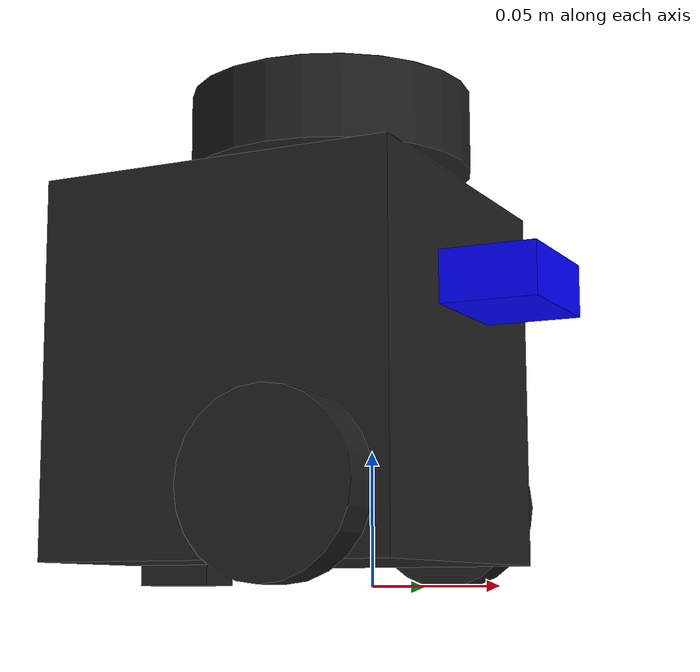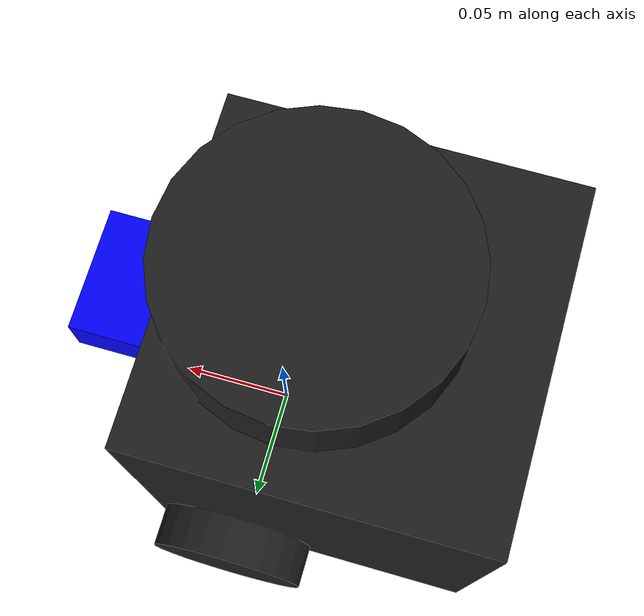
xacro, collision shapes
<?xml version="1.0" ?>
<robot name="turtlebot3_burger" xmlns:xacro="http://ros.org/wiki/xacro">
  <xacro:include filename="$(find turtlebot3_description)/urdf/common_properties.xacro"/>
  <xacro:include filename="$(find tramola)/urdf/turtlebot3_burger.gazebo.xacro"/>

  <!-- 1. DEFINE THE NEW LINK for the GPS sensor -->
  <link name="gps_link">
    <!-- (Optional) You can add a visual block to see it in RViz -->
    <visual>
      <geometry>
        <box size="0.05 0.05 0.02"/>
      </geometry>
      <material name="blue">
        <color rgba="0.0 0.0 1.0 1.0"/>
      </material>
    </visual>
    <!-- (Optional) Add collision and inertial properties if needed -->
    <collision>
      <geometry>
        <box size="0.05 0.05 0.02"/>
      </geometry>
    </collision>
    <inertial>
      <mass value="0.01"/>
      <origin xyz="0 0 0"/>
      <inertia ixx="0.0001" ixy="0" ixz="0" iyy="0.0001" iyz="0" izz="0.0001"/>
    </inertial>
  </link>

  <!-- 2. CONNECT THE GPS LINK to the robot's base with a FIXED JOINT -->
  <joint name="gps_joint" type="fixed">
    <!-- The parent link is the robot's main chassis -->
    <parent link="base_link"/>
    <!-- The child link is the new GPS sensor link -->
    <child link="gps_link"/>
    <!-- This defines the position and orientation of the GPS on the robot -->
    <!-- xyz="X Y Z" in meters, rpy="Roll Pitch Yaw" in radians -->
    <!-- This example places the GPS 5cm forward and 10cm up from the robot's center -->
    <origin xyz="0.05 0 0.1" rpy="0 0 0"/>
  </joint>

  <link name="base_footprint"/>

  <joint name="base_joint" type="fixed">
    <parent link="base_footprint"/>
    <child link="base_link"/>
    <origin xyz="0.0 0.0 0.010" rpy="0 0 0"/>
  </joint>

  <link name="base_link">
    <visual>
      <origin xyz="-0.032 0 0.0" rpy="0 0 0"/>
      <geometry>
        <mesh filename="package://turtlebot3_description/meshes/bases/burger_base.stl" scale="0.001 0.001 0.001"/>
      </geometry>
      <material name="light_black"/>
    </visual>

    <collision>
      <origin xyz="-0.032 0 0.070" rpy="0 0 0"/>
      <geometry>
        <box size="0.140 0.140 0.143"/>
      </geometry>
    </collision>

    <inertial>
      <origin xyz="0 0 0" rpy="0 0 0"/>
      <mass value="8.2573504e-01"/>
      <inertia ixx="2.2124416e-03" ixy="-1.2294101e-05" ixz="3.4938785e-05"
               iyy="2.1193702e-03" iyz="-5.0120904e-06"
               izz="2.0064271e-03" />
    </inertial>
  </link>

  <joint name="wheel_left_joint" type="continuous">
    <parent link="base_link"/>
    <child link="wheel_left_link"/>
    <origin xyz="0.0 0.08 0.023" rpy="-1.57 0 0"/>
    <axis xyz="0 0 1"/>
  </joint>

  <link name="wheel_left_link">
    <visual>
      <origin xyz="0 0 0" rpy="1.57 0 0"/>
      <geometry>
        <mesh filename="package://turtlebot3_description/meshes/wheels/left_tire.stl" scale="0.001 0.001 0.001"/>
      </geometry>
      <material name="dark"/>
    </visual>

    <collision>
      <origin xyz="0 0 0" rpy="0 0 0"/>
      <geometry>
        <cylinder length="0.018" radius="0.033"/>
      </geometry>
    </collision>

    <inertial>
      <origin xyz="0 0 0" />
      <mass value="2.8498940e-02" />
      <inertia ixx="1.1175580e-05" ixy="-4.2369783e-11" ixz="-5.9381719e-09"
               iyy="1.1192413e-05" iyz="-1.4400107e-11"
               izz="2.0712558e-05" />
      </inertial>
  </link>

  <joint name="wheel_right_joint" type="continuous">
    <parent link="base_link"/>
    <child link="wheel_right_link"/>
    <origin xyz="0.0 -0.080 0.023" rpy="-1.57 0 0"/>
    <axis xyz="0 0 1"/>
  </joint>

  <link name="wheel_right_link">
    <visual>
      <origin xyz="0 0 0" rpy="1.57 0 0"/>
      <geometry>
        <mesh filename="package://turtlebot3_description/meshes/wheels/right_tire.stl" scale="0.001 0.001 0.001"/>
      </geometry>
      <material name="dark"/>
    </visual>

    <collision>
      <origin xyz="0 0 0" rpy="0 0 0"/>
      <geometry>
        <cylinder length="0.018" radius="0.033"/>
      </geometry>
    </collision>

    <inertial>
      <origin xyz="0 0 0" />
      <mass value="2.8498940e-02" />
      <inertia ixx="1.1175580e-05" ixy="-4.2369783e-11" ixz="-5.9381719e-09"
               iyy="1.1192413e-05" iyz="-1.4400107e-11"
               izz="2.0712558e-05" />
      </inertial>
  </link>

  <joint name="caster_back_joint" type="fixed">
    <parent link="base_link"/>
    <child link="caster_back_link"/>
    <origin xyz="-0.081 0 -0.004" rpy="-1.57 0 0"/>
  </joint>

  <link name="caster_back_link">
    <collision>
      <origin xyz="0 0.001 0" rpy="0 0 0"/>
      <geometry>
        <box size="0.030 0.009 0.020"/>
      </geometry>
    </collision>

    <inertial>
      <origin xyz="0 0 0" />
      <mass value="0.005" />
      <inertia ixx="0.001" ixy="0.0" ixz="0.0"
               iyy="0.001" iyz="0.0"
               izz="0.001" />
    </inertial>
  </link>

  <joint name="imu_joint" type="fixed">
    <parent link="base_link"/>
    <child link="imu_link"/>
    <origin xyz="-0.032 0 0.068" rpy="0 0 0"/>
  </joint>

  <link name="imu_link"/>

  <joint name="scan_joint" type="fixed">
    <parent link="base_link"/>
    <child link="base_scan"/>
    <origin xyz="-0.032 0 0.172" rpy="0 0 0"/>
  </joint>

  <link name="base_scan">
    <visual>
      <origin xyz="0 0 0.0" rpy="0 0 0"/>
      <geometry>
        <mesh filename="package://turtlebot3_description/meshes/sensors/lds.stl" scale="0.001 0.001 0.001"/>
      </geometry>
      <material name="dark"/>
    </visual>

    <collision>
      <origin xyz="0.015 0 -0.0065" rpy="0 0 0"/>
      <geometry>
        <cylinder length="0.0315" radius="0.055"/>
      </geometry>
    </collision>

    <inertial>
      <mass value="0.114" />
      <origin xyz="0 0 0" />
      <inertia ixx="0.001" ixy="0.0" ixz="0.0"
               iyy="0.001" iyz="0.0"
               izz="0.001" />
    </inertial>
  </link>

</robot>
